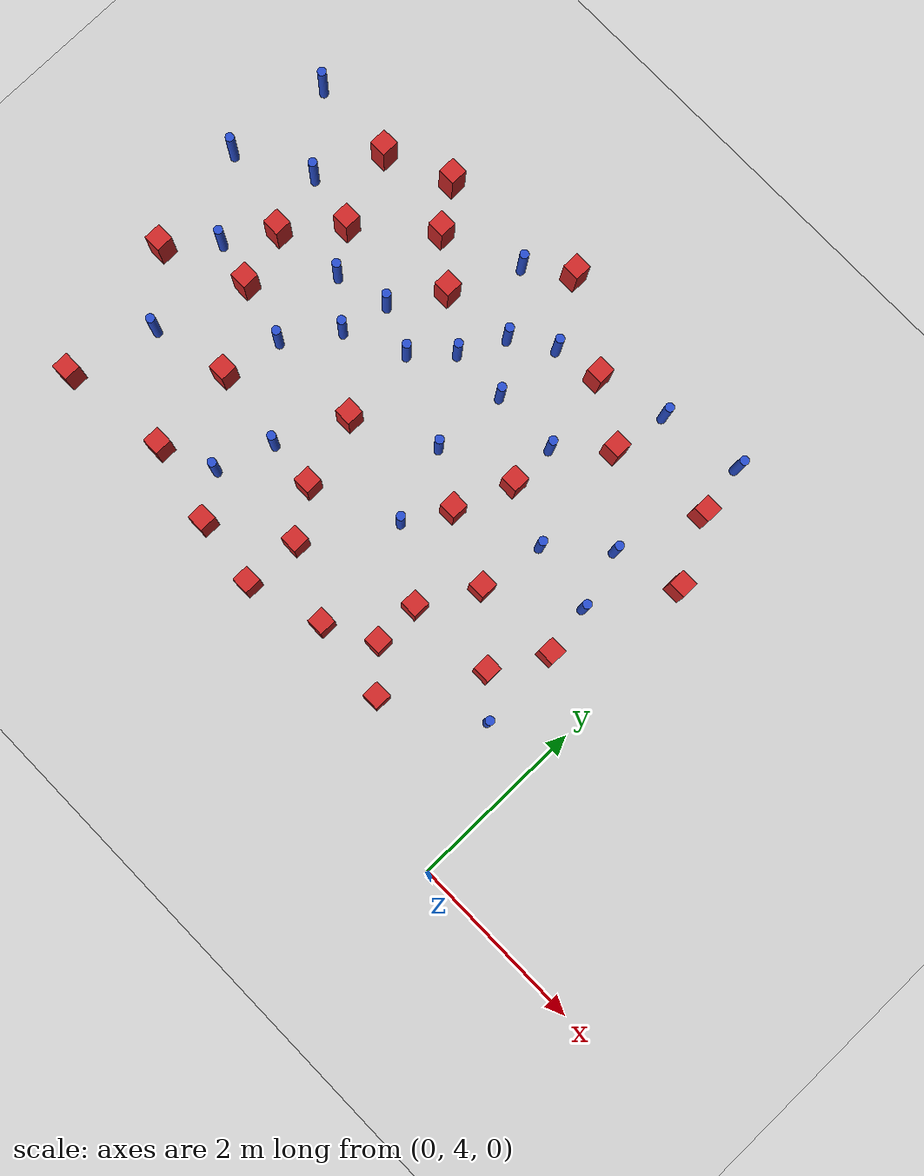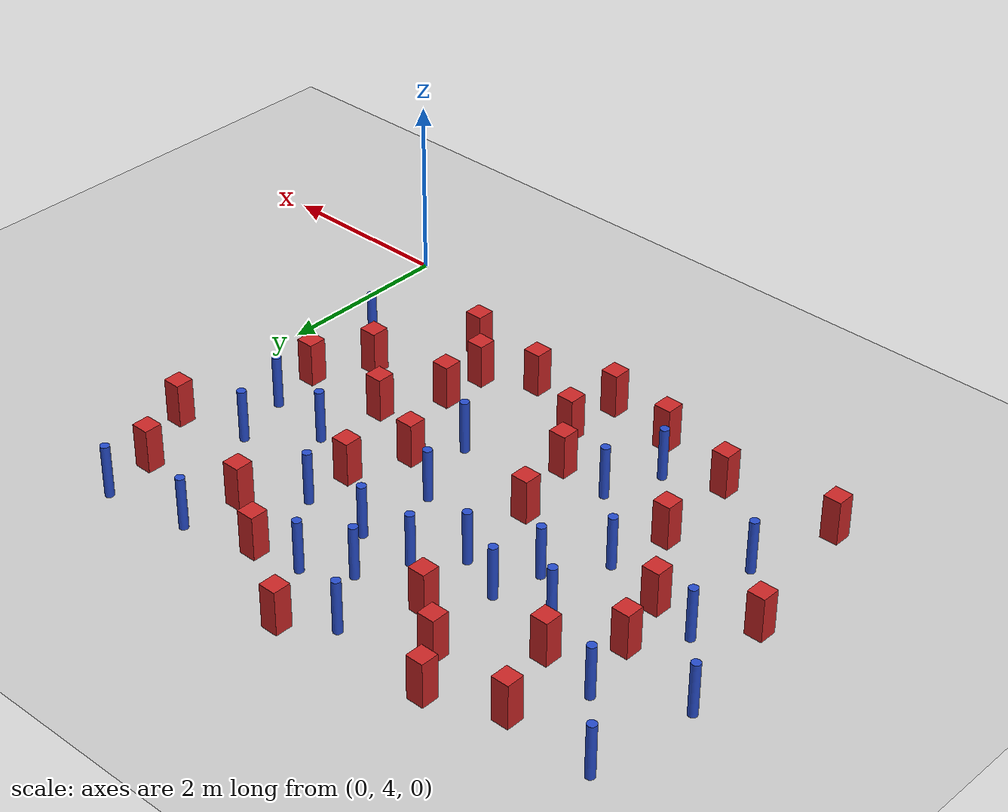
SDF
<sdf version="1.6">
 <world name="default">
  <model name="ground_plane">
   <static>1</static>
   <link name="link">
    <collision name="collision">
     <geometry><plane><normal>0 0 1</normal><size>100 100</size></plane></geometry>
     <surface><friction><ode><mu>100</mu><mu2>50</mu2></ode></friction></surface>
    </collision>
    <visual name="visual">
     <cast_shadows>0</cast_shadows>
     <geometry><plane><normal>0 0 1</normal><size>100 100</size></plane></geometry>
     <material>
      <ambient>1.0 1.0 1.0 1.0</ambient>
      <diffuse>0.8 0.8 0.8 1.0</diffuse>
      <specular>0.01 0.01 0.01 1.000000</specular>
     </material>
    </visual>
   </link>
  </model>
  <model name="square_post_obstacle2">
   <static>true</static>
   <pose>-1.6450809916 4.86027986707 1.91545236811e-07 -7.35059704564e-06 1.12565212e-07 2.39332434364e-05</pose>
   <link name="link">
    <pose>0 0 0.25 0 -0 0</pose>
    <inertial>
     <mass>100</mass>
     <inertia>
      <ixx>0.166667</ixx>
      <ixy>0</ixy>
      <ixz>0</ixz>
      <iyy>0.166667</iyy>
      <iyz>0</iyz>
      <izz>0.166667</izz>
     </inertia>
    </inertial>
    <collision name="collision"><geometry><box><size>.2 .2 .5</size></box></geometry></collision>
    <visual name="visual">
     <geometry><box><size>.2 .2 .5</size></box></geometry>
     <material>
      <script><name>Gazebo/Red</name><uri>file://media/materials/scripts/gazebo.material</uri></script>
     </material>
    </visual>
   </link>
  </model>
  <model name="square_post_obstacle5">
   <static>true</static>
   <pose>-2.05064613775 5.79552870133 1.91545236811e-07 -7.35059704564e-06 1.12565212e-07 2.39332434364e-05</pose>
   <link name="link">
    <pose>0 0 0.25 0 -0 0</pose>
    <inertial>
     <mass>100</mass>
     <inertia>
      <ixx>0.166667</ixx>
      <ixy>0</ixy>
      <ixz>0</ixz>
      <iyy>0.166667</iyy>
      <iyz>0</iyz>
      <izz>0.166667</izz>
     </inertia>
    </inertial>
    <collision name="collision"><geometry><box><size>.2 .2 .5</size></box></geometry></collision>
    <visual name="visual">
     <geometry><box><size>.2 .2 .5</size></box></geometry>
     <material>
      <script><name>Gazebo/Red</name><uri>file://media/materials/scripts/gazebo.material</uri></script>
     </material>
    </visual>
   </link>
  </model>
  <model name="pole_obstacle5">
   <static>true</static>
   <pose>-0.821117098225 7.03895343085 7.38925637345e-09 -8.471706928e-08 1.24976765086e-08 -1.74513093015e-07</pose>
   <link name="link">
    <pose>0 0 0.3 0 -0 0</pose>
    <inertial>
     <mass>1</mass>
     <inertia><ixx>0.145833</ixx><ixy>0</ixy><ixz>0</ixz><iyy>0.145833</iyy><iyz>0</iyz><izz>0.125</izz></inertia>
    </inertial>
    <collision name="collision">
     <geometry><cylinder><radius>0.05</radius><length>.6</length></cylinder></geometry>
    </collision>
    <visual name="visual">
     <geometry><cylinder><radius>0.05</radius><length>.6</length></cylinder></geometry>
     <material>
      <script><name>Gazebo/Blue</name><uri>file://media/materials/scripts/gazebo.material</uri></script>
     </material>
    </visual>
   </link>
  </model>
  <model name="square_post_obstacle8">
   <static>true</static>
   <pose>-2.46629739151 8.88326474359 1.91545236811e-07 -7.35059704564e-06 1.12565212e-07 2.39332434364e-05</pose>
   <link name="link">
    <pose>0 0 0.25 0 -0 0</pose>
    <inertial>
     <mass>100</mass>
     <inertia>
      <ixx>0.166667</ixx>
      <ixy>0</ixy>
      <ixz>0</ixz>
      <iyy>0.166667</iyy>
      <iyz>0</iyz>
      <izz>0.166667</izz>
     </inertia>
    </inertial>
    <collision name="collision"><geometry><box><size>.2 .2 .5</size></box></geometry></collision>
    <visual name="visual">
     <geometry><box><size>.2 .2 .5</size></box></geometry>
     <material>
      <script><name>Gazebo/Red</name><uri>file://media/materials/scripts/gazebo.material</uri></script>
     </material>
    </visual>
   </link>
  </model>
  <model name="square_post_obstacle24">
   <static>true</static>
   <pose>-5.0824964526 9.27646781381 1.91545236811e-07 -7.35059704564e-06 1.12565212e-07 2.39332434364e-05</pose>
   <link name="link">
    <pose>0 0 0.25 0 -0 0</pose>
    <inertial>
     <mass>100</mass>
     <inertia>
      <ixx>0.166667</ixx>
      <ixy>0</ixy>
      <ixz>0</ixz>
      <iyy>0.166667</iyy>
      <iyz>0</iyz>
      <izz>0.166667</izz>
     </inertia>
    </inertial>
    <collision name="collision"><geometry><box><size>.2 .2 .5</size></box></geometry></collision>
    <visual name="visual">
     <geometry><box><size>.2 .2 .5</size></box></geometry>
     <material>
      <script><name>Gazebo/Red</name><uri>file://media/materials/scripts/gazebo.material</uri></script>
     </material>
    </visual>
   </link>
  </model>
  <model name="square_post_obstacle34">
   <static>true</static>
   <pose>-3.42797544823 9.48898681773 1.91545236811e-07 -7.35059704564e-06 1.12565212e-07 2.39332434364e-05</pose>
   <link name="link">
    <pose>0 0 0.25 0 -0 0</pose>
    <inertial>
     <mass>100</mass>
     <inertia>
      <ixx>0.166667</ixx>
      <ixy>0</ixy>
      <ixz>0</ixz>
      <iyy>0.166667</iyy>
      <iyz>0</iyz>
      <izz>0.166667</izz>
     </inertia>
    </inertial>
    <collision name="collision"><geometry><box><size>.2 .2 .5</size></box></geometry></collision>
    <visual name="visual">
     <geometry><box><size>.2 .2 .5</size></box></geometry>
     <material>
      <script><name>Gazebo/Red</name><uri>file://media/materials/scripts/gazebo.material</uri></script>
     </material>
    </visual>
   </link>
  </model>
  <model name="pole_obstacle34">
   <static>true</static>
   <pose>-1.68032786721 9.09178856948 7.38925637345e-09 -8.47170692798e-08 1.24976764881e-08 -1.74513093027e-07</pose>
   <link name="link">
    <pose>0 0 0.3 0 -0 0</pose>
    <inertial>
     <mass>1</mass>
     <inertia><ixx>0.145833</ixx><ixy>0</ixy><ixz>0</ixz><iyy>0.145833</iyy><iyz>0</iyz><izz>0.125</izz></inertia>
    </inertial>
    <collision name="collision">
     <geometry><cylinder><radius>0.05</radius><length>.6</length></cylinder></geometry>
    </collision>
    <visual name="visual">
     <geometry><cylinder><radius>0.05</radius><length>.6</length></cylinder></geometry>
     <material>
      <script><name>Gazebo/Blue</name><uri>file://media/materials/scripts/gazebo.material</uri></script>
     </material>
    </visual>
   </link>
  </model>
  <model name="pole_obstacle35">
   <static>true</static>
   <pose>-5.09656689821 6.72482410313 7.38925637345e-09 -8.47170692796e-08 1.24976764786e-08 -1.74513093032e-07</pose>
   <link name="link">
    <pose>0 0 0.3 0 -0 0</pose>
    <inertial>
     <mass>1</mass>
     <inertia><ixx>0.145833</ixx><ixy>0</ixy><ixz>0</ixz><iyy>0.145833</iyy><iyz>0</iyz><izz>0.125</izz></inertia>
    </inertial>
    <collision name="collision">
     <geometry><cylinder><radius>0.05</radius><length>.6</length></cylinder></geometry>
    </collision>
    <visual name="visual">
     <geometry><cylinder><radius>0.05</radius><length>.6</length></cylinder></geometry>
     <material>
      <script><name>Gazebo/Blue</name><uri>file://media/materials/scripts/gazebo.material</uri></script>
     </material>
    </visual>
   </link>
  </model>
  <model name="pole_obstacle39">
   <static>true</static>
   <pose>-0.665240617858 5.50284004037 7.38925637345e-09 -8.471706928e-08 1.24976765086e-08 -1.74513093015e-07</pose>
   <link name="link">
    <pose>0 0 0.3 0 -0 0</pose>
    <inertial>
     <mass>1</mass>
     <inertia><ixx>0.145833</ixx><ixy>0</ixy><ixz>0</ixz><iyy>0.145833</iyy><iyz>0</iyz><izz>0.125</izz></inertia>
    </inertial>
    <collision name="collision">
     <geometry><cylinder><radius>0.05</radius><length>.6</length></cylinder></geometry>
    </collision>
    <visual name="visual">
     <geometry><cylinder><radius>0.05</radius><length>.6</length></cylinder></geometry>
     <material>
      <script><name>Gazebo/Blue</name><uri>file://media/materials/scripts/gazebo.material</uri></script>
     </material>
    </visual>
   </link>
  </model>
  <model name="pole_obstacle41">
   <static>true</static>
   <pose>-3.88664962259 9.15636735316 7.38925637345e-09 -8.47170692799e-08 1.24976765012e-08 -1.74513093021e-07</pose>
   <link name="link">
    <pose>0 0 0.3 0 -0 0</pose>
    <inertial>
     <mass>1</mass>
     <inertia><ixx>0.145833</ixx><ixy>0</ixy><ixz>0</ixz><iyy>0.145833</iyy><iyz>0</iyz><izz>0.125</izz></inertia>
    </inertial>
    <collision name="collision">
     <geometry><cylinder><radius>0.05</radius><length>.6</length></cylinder></geometry>
    </collision>
    <visual name="visual">
     <geometry><cylinder><radius>0.05</radius><length>.6</length></cylinder></geometry>
     <material>
      <script><name>Gazebo/Blue</name><uri>file://media/materials/scripts/gazebo.material</uri></script>
     </material>
    </visual>
   </link>
  </model>
  <model name="square_post_obstacle46">
   <static>true</static>
   <pose>-2.04258586172 5.26490292374 1.91545236811e-07 -7.35059704564e-06 1.12565212e-07 2.39332434364e-05</pose>
   <link name="link">
    <pose>0 0 0.25 0 -0 0</pose>
    <inertial>
     <mass>100</mass>
     <inertia>
      <ixx>0.166667</ixx>
      <ixy>0</ixy>
      <ixz>0</ixz>
      <iyy>0.166667</iyy>
      <iyz>0</iyz>
      <izz>0.166667</izz>
     </inertia>
    </inertial>
    <collision name="collision"><geometry><box><size>.2 .2 .5</size></box></geometry></collision>
    <visual name="visual">
     <geometry><box><size>.2 .2 .5</size></box></geometry>
     <material>
      <script><name>Gazebo/Red</name><uri>file://media/materials/scripts/gazebo.material</uri></script>
     </material>
    </visual>
   </link>
  </model>
  <model name="square_post_obstacle48">
   <static>true</static>
   <pose>-5.78669900526 6.90799992982 1.91545236811e-07 -7.35059704564e-06 1.12565212e-07 2.39332434364e-05</pose>
   <link name="link">
    <pose>0 0 0.25 0 -0 0</pose>
    <inertial>
     <mass>100</mass>
     <inertia>
      <ixx>0.166667</ixx>
      <ixy>0</ixy>
      <ixz>0</ixz>
      <iyy>0.166667</iyy>
      <iyz>0</iyz>
      <izz>0.166667</izz>
     </inertia>
    </inertial>
    <collision name="collision"><geometry><box><size>.2 .2 .5</size></box></geometry></collision>
    <visual name="visual">
     <geometry><box><size>.2 .2 .5</size></box></geometry>
     <material>
      <script><name>Gazebo/Red</name><uri>file://media/materials/scripts/gazebo.material</uri></script>
     </material>
    </visual>
   </link>
  </model>
  <model name="square_post_obstacle52">
   <static>true</static>
   <pose>-6.70958237577 6.53513901624 1.91545236811e-07 -7.35059704564e-06 1.12565212e-07 2.39332434364e-05</pose>
   <link name="link">
    <pose>0 0 0.25 0 -0 0</pose>
    <inertial>
     <mass>100</mass>
     <inertia>
      <ixx>0.166667</ixx>
      <ixy>0</ixy>
      <ixz>0</ixz>
      <iyy>0.166667</iyy>
      <iyz>0</iyz>
      <izz>0.166667</izz>
     </inertia>
    </inertial>
    <collision name="collision"><geometry><box><size>.2 .2 .5</size></box></geometry></collision>
    <visual name="visual">
     <geometry><box><size>.2 .2 .5</size></box></geometry>
     <material>
      <script><name>Gazebo/Red</name><uri>file://media/materials/scripts/gazebo.material</uri></script>
     </material>
    </visual>
   </link>
  </model>
  <model name="pole_obstacle58">
   <static>true</static>
   <pose>-4.58492661643 7.82388306524 7.38925637345e-09 -8.47170692796e-08 1.24976764786e-08 -1.74513093032e-07</pose>
   <link name="link">
    <pose>0 0 0.3 0 -0 0</pose>
    <inertial>
     <mass>1</mass>
     <inertia><ixx>0.145833</ixx><ixy>0</ixy><ixz>0</ixz><iyy>0.145833</iyy><iyz>0</iyz><izz>0.125</izz></inertia>
    </inertial>
    <collision name="collision">
     <geometry><cylinder><radius>0.05</radius><length>.6</length></cylinder></geometry>
    </collision>
    <visual name="visual">
     <geometry><cylinder><radius>0.05</radius><length>.6</length></cylinder></geometry>
     <material>
      <script><name>Gazebo/Blue</name><uri>file://media/materials/scripts/gazebo.material</uri></script>
     </material>
    </visual>
   </link>
  </model>
  <model name="pole_obstacle59">
   <static>true</static>
   <pose>-6.15182278736 8.25150208584 7.38925637345e-09 -8.471706928e-08 1.24976765081e-08 -1.74513093015e-07</pose>
   <link name="link">
    <pose>0 0 0.3 0 -0 0</pose>
    <inertial>
     <mass>1</mass>
     <inertia><ixx>0.145833</ixx><ixy>0</ixy><ixz>0</ixz><iyy>0.145833</iyy><iyz>0</iyz><izz>0.125</izz></inertia>
    </inertial>
    <collision name="collision">
     <geometry><cylinder><radius>0.05</radius><length>.6</length></cylinder></geometry>
    </collision>
    <visual name="visual">
     <geometry><cylinder><radius>0.05</radius><length>.6</length></cylinder></geometry>
     <material>
      <script><name>Gazebo/Blue</name><uri>file://media/materials/scripts/gazebo.material</uri></script>
     </material>
    </visual>
   </link>
  </model>
  <model name="square_post_obstacle63">
   <static>true</static>
   <pose>-5.22395186851 6.06849007464 1.91545236811e-07 -7.35059704564e-06 1.12565212e-07 2.39332434364e-05</pose>
   <link name="link">
    <pose>0 0 0.25 0 -0 0</pose>
    <inertial>
     <mass>100</mass>
     <inertia>
      <ixx>0.166667</ixx>
      <ixy>0</ixy>
      <ixz>0</ixz>
      <iyy>0.166667</iyy>
      <iyz>0</iyz>
      <izz>0.166667</izz>
     </inertia>
    </inertial>
    <collision name="collision"><geometry><box><size>.2 .2 .5</size></box></geometry></collision>
    <visual name="visual">
     <geometry><box><size>.2 .2 .5</size></box></geometry>
     <material>
      <script><name>Gazebo/Red</name><uri>file://media/materials/scripts/gazebo.material</uri></script>
     </material>
    </visual>
   </link>
  </model>
  <model name="pole_obstacle63">
   <static>true</static>
   <pose>-6.81067940548 9.01214676476 7.38925637345e-09 -8.471706928e-08 1.24976765081e-08 -1.74513093015e-07</pose>
   <link name="link">
    <pose>0 0 0.3 0 -0 0</pose>
    <inertial>
     <mass>1</mass>
     <inertia><ixx>0.145833</ixx><ixy>0</ixy><ixz>0</ixz><iyy>0.145833</iyy><iyz>0</iyz><izz>0.125</izz></inertia>
    </inertial>
    <collision name="collision">
     <geometry><cylinder><radius>0.05</radius><length>.6</length></cylinder></geometry>
    </collision>
    <visual name="visual">
     <geometry><cylinder><radius>0.05</radius><length>.6</length></cylinder></geometry>
     <material>
      <script><name>Gazebo/Blue</name><uri>file://media/materials/scripts/gazebo.material</uri></script>
     </material>
    </visual>
   </link>
  </model>
  <model name="square_post_obstacle76">
   <static>true</static>
   <pose>-2.58510832781 4.97790523694 1.91545236811e-07 -7.35059704564e-06 1.12565212e-07 2.39332434364e-05</pose>
   <link name="link">
    <pose>0 0 0.25 0 -0 0</pose>
    <inertial>
     <mass>100</mass>
     <inertia>
      <ixx>0.166667</ixx>
      <ixy>0</ixy>
      <ixz>0</ixz>
      <iyy>0.166667</iyy>
      <iyz>0</iyz>
      <izz>0.166667</izz>
     </inertia>
    </inertial>
    <collision name="collision"><geometry><box><size>.2 .2 .5</size></box></geometry></collision>
    <visual name="visual">
     <geometry><box><size>.2 .2 .5</size></box></geometry>
     <material>
      <script><name>Gazebo/Red</name><uri>file://media/materials/scripts/gazebo.material</uri></script>
     </material>
    </visual>
   </link>
  </model>
  <model name="pole_obstacle72">
   <static>true</static>
   <pose>-4.70419938552 7.29064237692 7.38925637345e-09 -8.47170692796e-08 1.24976764786e-08 -1.74513093032e-07</pose>
   <link name="link">
    <pose>0 0 0.3 0 -0 0</pose>
    <inertial>
     <mass>1</mass>
     <inertia><ixx>0.145833</ixx><ixy>0</ixy><ixz>0</ixz><iyy>0.145833</iyy><iyz>0</iyz><izz>0.125</izz></inertia>
    </inertial>
    <collision name="collision">
     <geometry><cylinder><radius>0.05</radius><length>.6</length></cylinder></geometry>
    </collision>
    <visual name="visual">
     <geometry><cylinder><radius>0.05</radius><length>.6</length></cylinder></geometry>
     <material>
      <script><name>Gazebo/Blue</name><uri>file://media/materials/scripts/gazebo.material</uri></script>
     </material>
    </visual>
   </link>
  </model>
  <model name="pole_obstacle75">
   <static>true</static>
   <pose>-2.26810608649 7.97958369007 7.38925637345e-09 -8.47170692799e-08 1.24976765031e-08 -1.7451309302e-07</pose>
   <link name="link">
    <pose>0 0 0.3 0 -0 0</pose>
    <inertial>
     <mass>1</mass>
     <inertia><ixx>0.145833</ixx><ixy>0</ixy><ixz>0</ixz><iyy>0.145833</iyy><iyz>0</iyz><izz>0.125</izz></inertia>
    </inertial>
    <collision name="collision">
     <geometry><cylinder><radius>0.05</radius><length>.6</length></cylinder></geometry>
    </collision>
    <visual name="visual">
     <geometry><cylinder><radius>0.05</radius><length>.6</length></cylinder></geometry>
     <material>
      <script><name>Gazebo/Blue</name><uri>file://media/materials/scripts/gazebo.material</uri></script>
     </material>
    </visual>
   </link>
  </model>
  <model name="pole_obstacle87">
   <static>true</static>
   <pose>-1.59594417406 7.17169164542 7.38925637345e-09 -8.47170692799e-08 1.24976765033e-08 -1.74513093018e-07</pose>
   <link name="link">
    <pose>0 0 0.3 0 -0 0</pose>
    <inertial>
     <mass>1</mass>
     <inertia><ixx>0.145833</ixx><ixy>0</ixy><ixz>0</ixz><iyy>0.145833</iyy><iyz>0</iyz><izz>0.125</izz></inertia>
    </inertial>
    <collision name="collision">
     <geometry><cylinder><radius>0.05</radius><length>.6</length></cylinder></geometry>
    </collision>
    <visual name="visual">
     <geometry><cylinder><radius>0.05</radius><length>.6</length></cylinder></geometry>
     <material>
      <script><name>Gazebo/Blue</name><uri>file://media/materials/scripts/gazebo.material</uri></script>
     </material>
    </visual>
   </link>
  </model>
  <model name="pole_obstacle95">
   <static>true</static>
   <pose>-6.09809782571 5.87105104789 7.38925637345e-09 -8.47170692796e-08 1.24976764786e-08 -1.74513093032e-07</pose>
   <link name="link">
    <pose>0 0 0.3 0 -0 0</pose>
    <inertial>
     <mass>1</mass>
     <inertia><ixx>0.145833</ixx><ixy>0</ixy><ixz>0</ixz><iyy>0.145833</iyy><iyz>0</iyz><izz>0.125</izz></inertia>
    </inertial>
    <collision name="collision">
     <geometry><cylinder><radius>0.05</radius><length>.6</length></cylinder></geometry>
    </collision>
    <visual name="visual">
     <geometry><cylinder><radius>0.05</radius><length>.6</length></cylinder></geometry>
     <material>
      <script><name>Gazebo/Blue</name><uri>file://media/materials/scripts/gazebo.material</uri></script>
     </material>
    </visual>
   </link>
  </model>
  <model name="square_post_obstacle84">
   <static>true</static>
   <pose>-5.1241217481 5.04338609667 1.91545236811e-07 -7.35059704564e-06 1.12565212e-07 2.39332434364e-05</pose>
   <link name="link">
    <pose>0 0 0.25 0 -0 0</pose>
    <inertial>
     <mass>100</mass>
     <inertia>
      <ixx>0.166667</ixx>
      <ixy>0</ixy>
      <ixz>0</ixz>
      <iyy>0.166667</iyy>
      <iyz>0</iyz>
      <izz>0.166667</izz>
     </inertia>
    </inertial>
    <collision name="collision"><geometry><box><size>.2 .2 .5</size></box></geometry></collision>
    <visual name="visual">
     <geometry><box><size>.2 .2 .5</size></box></geometry>
     <material>
      <script><name>Gazebo/Red</name><uri>file://media/materials/scripts/gazebo.material</uri></script>
     </material>
    </visual>
   </link>
  </model>
  <model name="pole_obstacle102">
   <static>true</static>
   <pose>-2.7903983642 6.30419786214 7.38925637345e-09 -8.47170692798e-08 1.24976765033e-08 -1.74513093019e-07</pose>
   <link name="link">
    <pose>0 0 0.3 0 -0 0</pose>
    <inertial>
     <mass>1</mass>
     <inertia><ixx>0.145833</ixx><ixy>0</ixy><ixz>0</ixz><iyy>0.145833</iyy><iyz>0</iyz><izz>0.125</izz></inertia>
    </inertial>
    <collision name="collision">
     <geometry><cylinder><radius>0.05</radius><length>.6</length></cylinder></geometry>
    </collision>
    <visual name="visual">
     <geometry><cylinder><radius>0.05</radius><length>.6</length></cylinder></geometry>
     <material>
      <script><name>Gazebo/Blue</name><uri>file://media/materials/scripts/gazebo.material</uri></script>
     </material>
    </visual>
   </link>
  </model>
  <model name="square_post_obstacle92">
   <static>true</static>
   <pose>-3.74373488959 5.88522773009 1.91545236811e-07 -7.35059704564e-06 1.12565212e-07 2.39332434364e-05</pose>
   <link name="link">
    <pose>0 0 0.25 0 -0 0</pose>
    <inertial>
     <mass>100</mass>
     <inertia>
      <ixx>0.166667</ixx>
      <ixy>0</ixy>
      <ixz>0</ixz>
      <iyy>0.166667</iyy>
      <iyz>0</iyz>
      <izz>0.166667</izz>
     </inertia>
    </inertial>
    <collision name="collision"><geometry><box><size>.2 .2 .5</size></box></geometry></collision>
    <visual name="visual">
     <geometry><box><size>.2 .2 .5</size></box></geometry>
     <material>
      <script><name>Gazebo/Red</name><uri>file://media/materials/scripts/gazebo.material</uri></script>
     </material>
    </visual>
   </link>
  </model>
  <model name="square_post_obstacle98">
   <static>true</static>
   <pose>-5.81429045029 8.96977163118 1.91545236811e-07 -7.35059704564e-06 1.12565212e-07 2.39332434364e-05</pose>
   <link name="link">
    <pose>0 0 0.25 0 -0 0</pose>
    <inertial>
     <mass>100</mass>
     <inertia>
      <ixx>0.166667</ixx>
      <ixy>0</ixy>
      <ixz>0</ixz>
      <iyy>0.166667</iyy>
      <iyz>0</iyz>
      <izz>0.166667</izz>
     </inertia>
    </inertial>
    <collision name="collision"><geometry><box><size>.2 .2 .5</size></box></geometry></collision>
    <visual name="visual">
     <geometry><box><size>.2 .2 .5</size></box></geometry>
     <material>
      <script><name>Gazebo/Red</name><uri>file://media/materials/scripts/gazebo.material</uri></script>
     </material>
    </visual>
   </link>
  </model>
  <model name="pole_obstacle112">
   <static>true</static>
   <pose>-0.752549461139 9.24912057601 7.38925637345e-09 -8.47170692797e-08 1.249767648e-08 -1.74513093032e-07</pose>
   <link name="link">
    <pose>0 0 0.3 0 -0 0</pose>
    <inertial>
     <mass>1</mass>
     <inertia><ixx>0.145833</ixx><ixy>0</ixy><ixz>0</ixz><iyy>0.145833</iyy><iyz>0</iyz><izz>0.125</izz></inertia>
    </inertial>
    <collision name="collision">
     <geometry><cylinder><radius>0.05</radius><length>.6</length></cylinder></geometry>
    </collision>
    <visual name="visual">
     <geometry><cylinder><radius>0.05</radius><length>.6</length></cylinder></geometry>
     <material>
      <script><name>Gazebo/Blue</name><uri>file://media/materials/scripts/gazebo.material</uri></script>
     </material>
    </visual>
   </link>
  </model>
  <model name="square_post_obstacle99">
   <static>true</static>
   <pose>-0.729030908746 6.4625945623 1.91545236811e-07 -7.35059704564e-06 1.12565212e-07 2.39332434364e-05</pose>
   <link name="link">
    <pose>0 0 0.25 0 -0 0</pose>
    <inertial>
     <mass>100</mass>
     <inertia>
      <ixx>0.166667</ixx>
      <ixy>0</ixy>
      <ixz>0</ixz>
      <iyy>0.166667</iyy>
      <iyz>0</iyz>
      <izz>0.166667</izz>
     </inertia>
    </inertial>
    <collision name="collision"><geometry><box><size>.2 .2 .5</size></box></geometry></collision>
    <visual name="visual">
     <geometry><box><size>.2 .2 .5</size></box></geometry>
     <material>
      <script><name>Gazebo/Red</name><uri>file://media/materials/scripts/gazebo.material</uri></script>
     </material>
    </visual>
   </link>
  </model>
  <model name="square_post_obstacle100">
   <static>true</static>
   <pose>-5.50871580547 8.1253391566 1.91545236811e-07 -7.35059704564e-06 1.12565212e-07 2.39332434364e-05</pose>
   <link name="link">
    <pose>0 0 0.25 0 -0 0</pose>
    <inertial>
     <mass>100</mass>
     <inertia>
      <ixx>0.166667</ixx>
      <ixy>0</ixy>
      <ixz>0</ixz>
      <iyy>0.166667</iyy>
      <iyz>0</iyz>
      <izz>0.166667</izz>
     </inertia>
    </inertial>
    <collision name="collision"><geometry><box><size>.2 .2 .5</size></box></geometry></collision>
    <visual name="visual">
     <geometry><box><size>.2 .2 .5</size></box></geometry>
     <material>
      <script><name>Gazebo/Red</name><uri>file://media/materials/scripts/gazebo.material</uri></script>
     </material>
    </visual>
   </link>
  </model>
  <model name="square_post_obstacle102">
   <static>true</static>
   <pose>-0.286243018771 7.91086980621 1.91545236811e-07 -7.35059704564e-06 1.12565212e-07 2.39332434364e-05</pose>
   <link name="link">
    <pose>0 0 0.25 0 -0 0</pose>
    <inertial>
     <mass>100</mass>
     <inertia>
      <ixx>0.166667</ixx>
      <ixy>0</ixy>
      <ixz>0</ixz>
      <iyy>0.166667</iyy>
      <iyz>0</iyz>
      <izz>0.166667</izz>
     </inertia>
    </inertial>
    <collision name="collision"><geometry><box><size>.2 .2 .5</size></box></geometry></collision>
    <visual name="visual">
     <geometry><box><size>.2 .2 .5</size></box></geometry>
     <material>
      <script><name>Gazebo/Red</name><uri>file://media/materials/scripts/gazebo.material</uri></script>
     </material>
    </visual>
   </link>
  </model>
  <model name="square_post_obstacle106">
   <static>true</static>
   <pose>-3.39022279768 5.36921829434 1.91545236811e-07 -7.35059704564e-06 1.12565212e-07 2.39332434364e-05</pose>
   <link name="link">
    <pose>0 0 0.25 0 -0 0</pose>
    <inertial>
     <mass>100</mass>
     <inertia>
      <ixx>0.166667</ixx>
      <ixy>0</ixy>
      <ixz>0</ixz>
      <iyy>0.166667</iyy>
      <iyz>0</iyz>
      <izz>0.166667</izz>
     </inertia>
    </inertial>
    <collision name="collision"><geometry><box><size>.2 .2 .5</size></box></geometry></collision>
    <visual name="visual">
     <geometry><box><size>.2 .2 .5</size></box></geometry>
     <material>
      <script><name>Gazebo/Red</name><uri>file://media/materials/scripts/gazebo.material</uri></script>
     </material>
    </visual>
   </link>
  </model>
  <model name="square_post_obstacle108">
   <static>true</static>
   <pose>-2.26530567455 7.44333100319 1.91545236811e-07 -7.35059704564e-06 1.12565212e-07 2.39332434364e-05</pose>
   <link name="link">
    <pose>0 0 0.25 0 -0 0</pose>
    <inertial>
     <mass>100</mass>
     <inertia>
      <ixx>0.166667</ixx>
      <ixy>0</ixy>
      <ixz>0</ixz>
      <iyy>0.166667</iyy>
      <iyz>0</iyz>
      <izz>0.166667</izz>
     </inertia>
    </inertial>
    <collision name="collision"><geometry><box><size>.2 .2 .5</size></box></geometry></collision>
    <visual name="visual">
     <geometry><box><size>.2 .2 .5</size></box></geometry>
     <material>
      <script><name>Gazebo/Red</name><uri>file://media/materials/scripts/gazebo.material</uri></script>
     </material>
    </visual>
   </link>
  </model>
  <model name="square_post_obstacle109">
   <static>true</static>
   <pose>-1.78501958554 8.45395523908 1.91545236811e-07 -7.35059704564e-06 1.12565212e-07 2.39332434364e-05</pose>
   <link name="link">
    <pose>0 0 0.25 0 -0 0</pose>
    <inertial>
     <mass>100</mass>
     <inertia>
      <ixx>0.166667</ixx>
      <ixy>0</ixy>
      <ixz>0</ixz>
      <iyy>0.166667</iyy>
      <iyz>0</iyz>
      <izz>0.166667</izz>
     </inertia>
    </inertial>
    <collision name="collision"><geometry><box><size>.2 .2 .5</size></box></geometry></collision>
    <visual name="visual">
     <geometry><box><size>.2 .2 .5</size></box></geometry>
     <material>
      <script><name>Gazebo/Red</name><uri>file://media/materials/scripts/gazebo.material</uri></script>
     </material>
    </visual>
   </link>
  </model>
  <model name="pole_obstacle124">
   <static>true</static>
   <pose>-1.01878036748 7.70008040346 7.38925637345e-09 -8.47170692799e-08 1.2497676505e-08 -1.74513093018e-07</pose>
   <link name="link">
    <pose>0 0 0.3 0 -0 0</pose>
    <inertial>
     <mass>1</mass>
     <inertia><ixx>0.145833</ixx><ixy>0</ixy><ixz>0</ixz><iyy>0.145833</iyy><iyz>0</iyz><izz>0.125</izz></inertia>
    </inertial>
    <collision name="collision">
     <geometry><cylinder><radius>0.05</radius><length>.6</length></cylinder></geometry>
    </collision>
    <visual name="visual">
     <geometry><cylinder><radius>0.05</radius><length>.6</length></cylinder></geometry>
     <material>
      <script><name>Gazebo/Blue</name><uri>file://media/materials/scripts/gazebo.material</uri></script>
     </material>
    </visual>
   </link>
  </model>
  <model name="pole_obstacle129">
   <static>true</static>
   <pose>-4.05122980727 7.60308537868 7.38925637345e-09 -8.47170692796e-08 1.24976764786e-08 -1.74513093032e-07</pose>
   <link name="link">
    <pose>0 0 0.3 0 -0 0</pose>
    <inertial>
     <mass>1</mass>
     <inertia><ixx>0.145833</ixx><ixy>0</ixy><ixz>0</ixz><iyy>0.145833</iyy><iyz>0</iyz><izz>0.125</izz></inertia>
    </inertial>
    <collision name="collision">
     <geometry><cylinder><radius>0.05</radius><length>.6</length></cylinder></geometry>
    </collision>
    <visual name="visual">
     <geometry><cylinder><radius>0.05</radius><length>.6</length></cylinder></geometry>
     <material>
      <script><name>Gazebo/Blue</name><uri>file://media/materials/scripts/gazebo.material</uri></script>
     </material>
    </visual>
   </link>
  </model>
  <model name="square_post_obstacle114">
   <static>true</static>
   <pose>-6.35788175986 4.89614650909 1.91545236811e-07 -7.35059704564e-06 1.12565212e-07 2.39332434364e-05</pose>
   <link name="link">
    <pose>0 0 0.25 0 -0 0</pose>
    <inertial>
     <mass>100</mass>
     <inertia>
      <ixx>0.166667</ixx>
      <ixy>0</ixy>
      <ixz>0</ixz>
      <iyy>0.166667</iyy>
      <iyz>0</iyz>
      <izz>0.166667</izz>
     </inertia>
    </inertial>
    <collision name="collision"><geometry><box><size>.2 .2 .5</size></box></geometry></collision>
    <visual name="visual">
     <geometry><box><size>.2 .2 .5</size></box></geometry>
     <material>
      <script><name>Gazebo/Red</name><uri>file://media/materials/scripts/gazebo.material</uri></script>
     </material>
    </visual>
   </link>
  </model>
  <model name="square_post_obstacle118">
   <static>true</static>
   <pose>-0.661354243095 8.64779749715 1.91545236811e-07 -7.35059704564e-06 1.12565212e-07 2.39332434364e-05</pose>
   <link name="link">
    <pose>0 0 0.25 0 -0 0</pose>
    <inertial>
     <mass>100</mass>
     <inertia>
      <ixx>0.166667</ixx>
      <ixy>0</ixy>
      <ixz>0</ixz>
      <iyy>0.166667</iyy>
      <iyz>0</iyz>
      <izz>0.166667</izz>
     </inertia>
    </inertial>
    <collision name="collision"><geometry><box><size>.2 .2 .5</size></box></geometry></collision>
    <visual name="visual">
     <geometry><box><size>.2 .2 .5</size></box></geometry>
     <material>
      <script><name>Gazebo/Red</name><uri>file://media/materials/scripts/gazebo.material</uri></script>
     </material>
    </visual>
   </link>
  </model>
  <model name="pole_obstacle138">
   <static>true</static>
   <pose>-3.68232869288 7.99652024962 7.38925637345e-09 -8.471706928e-08 1.24976765193e-08 -1.74513093011e-07</pose>
   <link name="link">
    <pose>0 0 0.3 0 -0 0</pose>
    <inertial>
     <mass>1</mass>
     <inertia><ixx>0.145833</ixx><ixy>0</ixy><ixz>0</ixz><iyy>0.145833</iyy><iyz>0</iyz><izz>0.125</izz></inertia>
    </inertial>
    <collision name="collision">
     <geometry><cylinder><radius>0.05</radius><length>.6</length></cylinder></geometry>
    </collision>
    <visual name="visual">
     <geometry><cylinder><radius>0.05</radius><length>.6</length></cylinder></geometry>
     <material>
      <script><name>Gazebo/Blue</name><uri>file://media/materials/scripts/gazebo.material</uri></script>
     </material>
    </visual>
   </link>
  </model>
  <model name="square_post_obstacle127">
   <static>true</static>
   <pose>-4.74892768618 8.7930191291 1.91545236811e-07 -7.35059704564e-06 1.12565212e-07 2.39332434364e-05</pose>
   <link name="link">
    <pose>0 0 0.25 0 -0 0</pose>
    <inertial>
     <mass>100</mass>
     <inertia>
      <ixx>0.166667</ixx>
      <ixy>0</ixy>
      <ixz>0</ixz>
      <iyy>0.166667</iyy>
      <iyz>0</iyz>
      <izz>0.166667</izz>
     </inertia>
    </inertial>
    <collision name="collision"><geometry><box><size>.2 .2 .5</size></box></geometry></collision>
    <visual name="visual">
     <geometry><box><size>.2 .2 .5</size></box></geometry>
     <material>
      <script><name>Gazebo/Red</name><uri>file://media/materials/scripts/gazebo.material</uri></script>
     </material>
    </visual>
   </link>
  </model>
  <model name="square_post_obstacle134">
   <static>true</static>
   <pose>-3.96874499304 6.69140585488 1.91545236811e-07 -7.35059704564e-06 1.12565212e-07 2.39332434364e-05</pose>
   <link name="link">
    <pose>0 0 0.25 0 -0 0</pose>
    <inertial>
     <mass>100</mass>
     <inertia>
      <ixx>0.166667</ixx>
      <ixy>0</ixy>
      <ixz>0</ixz>
      <iyy>0.166667</iyy>
      <iyz>0</iyz>
      <izz>0.166667</izz>
     </inertia>
    </inertial>
    <collision name="collision"><geometry><box><size>.2 .2 .5</size></box></geometry></collision>
    <visual name="visual">
     <geometry><box><size>.2 .2 .5</size></box></geometry>
     <material>
      <script><name>Gazebo/Red</name><uri>file://media/materials/scripts/gazebo.material</uri></script>
     </material>
    </visual>
   </link>
  </model>
  <model name="pole_obstacle145">
   <static>true</static>
   <pose>-4.31964699093 5.92540208681 7.38925637345e-09 -8.47170692796e-08 1.24976764786e-08 -1.74513093032e-07</pose>
   <link name="link">
    <pose>0 0 0.3 0 -0 0</pose>
    <inertial>
     <mass>1</mass>
     <inertia><ixx>0.145833</ixx><ixy>0</ixy><ixz>0</ixz><iyy>0.145833</iyy><iyz>0</iyz><izz>0.125</izz></inertia>
    </inertial>
    <collision name="collision">
     <geometry><cylinder><radius>0.05</radius><length>.6</length></cylinder></geometry>
    </collision>
    <visual name="visual">
     <geometry><cylinder><radius>0.05</radius><length>.6</length></cylinder></geometry>
     <material>
      <script><name>Gazebo/Blue</name><uri>file://media/materials/scripts/gazebo.material</uri></script>
     </material>
    </visual>
   </link>
  </model>
  <model name="pole_obstacle147">
   <static>true</static>
   <pose>-4.54198650213 5.29256581559 7.38925637345e-09 -8.47170692796e-08 1.24976764786e-08 -1.74513093032e-07</pose>
   <link name="link">
    <pose>0 0 0.3 0 -0 0</pose>
    <inertial>
     <mass>1</mass>
     <inertia><ixx>0.145833</ixx><ixy>0</ixy><ixz>0</ixz><iyy>0.145833</iyy><iyz>0</iyz><izz>0.125</izz></inertia>
    </inertial>
    <collision name="collision">
     <geometry><cylinder><radius>0.05</radius><length>.6</length></cylinder></geometry>
    </collision>
    <visual name="visual">
     <geometry><cylinder><radius>0.05</radius><length>.6</length></cylinder></geometry>
     <material>
      <script><name>Gazebo/Blue</name><uri>file://media/materials/scripts/gazebo.material</uri></script>
     </material>
    </visual>
   </link>
  </model>
  <model name="pole_obstacle154">
   <static>true</static>
   <pose>-6.30299065531 7.03067799362 7.38925637345e-09 -8.47170692796e-08 1.24976764786e-08 -1.74513093032e-07</pose>
   <link name="link">
    <pose>0 0 0.3 0 -0 0</pose>
    <inertial>
     <mass>1</mass>
     <inertia><ixx>0.145833</ixx><ixy>0</ixy><ixz>0</ixz><iyy>0.145833</iyy><iyz>0</iyz><izz>0.125</izz></inertia>
    </inertial>
    <collision name="collision">
     <geometry><cylinder><radius>0.05</radius><length>.6</length></cylinder></geometry>
    </collision>
    <visual name="visual">
     <geometry><cylinder><radius>0.05</radius><length>.6</length></cylinder></geometry>
     <material>
      <script><name>Gazebo/Blue</name><uri>file://media/materials/scripts/gazebo.material</uri></script>
     </material>
    </visual>
   </link>
  </model>
  <model name="square_post_obstacle145">
   <static>true</static>
   <pose>-4.21488906106 4.82893117929 1.91545236811e-07 -7.35059704564e-06 1.12565212e-07 2.39332434364e-05</pose>
   <link name="link">
    <pose>0 0 0.25 0 -0 0</pose>
    <inertial>
     <mass>100</mass>
     <inertia>
      <ixx>0.166667</ixx>
      <ixy>0</ixy>
      <ixz>0</ixz>
      <iyy>0.166667</iyy>
      <iyz>0</iyz>
      <izz>0.166667</izz>
     </inertia>
    </inertial>
    <collision name="collision"><geometry><box><size>.2 .2 .5</size></box></geometry></collision>
    <visual name="visual">
     <geometry><box><size>.2 .2 .5</size></box></geometry>
     <material>
      <script><name>Gazebo/Red</name><uri>file://media/materials/scripts/gazebo.material</uri></script>
     </material>
    </visual>
   </link>
  </model>
  <model name="square_post_obstacle148">
   <static>true</static>
   <pose>-1.70931392194 6.43000043958 1.91545236811e-07 -7.35059704564e-06 1.12565212e-07 2.39332434364e-05</pose>
   <link name="link">
    <pose>0 0 0.25 0 -0 0</pose>
    <inertial>
     <mass>100</mass>
     <inertia>
      <ixx>0.166667</ixx>
      <ixy>0</ixy>
      <ixz>0</ixz>
      <iyy>0.166667</iyy>
      <iyz>0</iyz>
      <izz>0.166667</izz>
     </inertia>
    </inertial>
    <collision name="collision"><geometry><box><size>.2 .2 .5</size></box></geometry></collision>
    <visual name="visual">
     <geometry><box><size>.2 .2 .5</size></box></geometry>
     <material>
      <script><name>Gazebo/Red</name><uri>file://media/materials/scripts/gazebo.material</uri></script>
     </material>
    </visual>
   </link>
  </model>
  <model name="square_post_obstacle154">
   <static>true</static>
   <pose>-1.05777757186 5.8628327066 1.91545236811e-07 -7.35059704564e-06 1.12565212e-07 2.39332434364e-05</pose>
   <link name="link">
    <pose>0 0 0.25 0 -0 0</pose>
    <inertial>
     <mass>100</mass>
     <inertia>
      <ixx>0.166667</ixx>
      <ixy>0</ixy>
      <ixz>0</ixz>
      <iyy>0.166667</iyy>
      <iyz>0</iyz>
      <izz>0.166667</izz>
     </inertia>
    </inertial>
    <collision name="collision"><geometry><box><size>.2 .2 .5</size></box></geometry></collision>
    <visual name="visual">
     <geometry><box><size>.2 .2 .5</size></box></geometry>
     <material>
      <script><name>Gazebo/Red</name><uri>file://media/materials/scripts/gazebo.material</uri></script>
     </material>
    </visual>
   </link>
  </model>
  <model name="pole_obstacle169">
   <static>true</static>
   <pose>-3.03631816934 7.99618464026 7.38925637345e-09 -8.471706928e-08 1.24976765193e-08 -1.74513093011e-07</pose>
   <link name="link">
    <pose>0 0 0.3 0 -0 0</pose>
    <inertial>
     <mass>1</mass>
     <inertia><ixx>0.145833</ixx><ixy>0</ixy><ixz>0</ixz><iyy>0.145833</iyy><iyz>0</iyz><izz>0.125</izz></inertia>
    </inertial>
    <collision name="collision">
     <geometry><cylinder><radius>0.05</radius><length>.6</length></cylinder></geometry>
    </collision>
    <visual name="visual">
     <geometry><cylinder><radius>0.05</radius><length>.6</length></cylinder></geometry>
     <material>
      <script><name>Gazebo/Blue</name><uri>file://media/materials/scripts/gazebo.material</uri></script>
     </material>
    </visual>
   </link>
  </model>
  <model name="square_post_obstacle161">
   <static>true</static>
   <pose>-5.97100118873 7.55084269408 1.91545236811e-07 -7.35059704564e-06 1.12565212e-07 2.39332434364e-05</pose>
   <link name="link">
    <pose>0 0 0.25 0 -0 0</pose>
    <inertial>
     <mass>100</mass>
     <inertia>
      <ixx>0.166667</ixx>
      <ixy>0</ixy>
      <ixz>0</ixz>
      <iyy>0.166667</iyy>
      <iyz>0</iyz>
      <izz>0.166667</izz>
     </inertia>
    </inertial>
    <collision name="collision"><geometry><box><size>.2 .2 .5</size></box></geometry></collision>
    <visual name="visual">
     <geometry><box><size>.2 .2 .5</size></box></geometry>
     <material>
      <script><name>Gazebo/Red</name><uri>file://media/materials/scripts/gazebo.material</uri></script>
     </material>
    </visual>
   </link>
  </model>
  <model name="square_post_obstacle163">
   <static>true</static>
   <pose>-4.23730010594 8.38716039462 1.91545236811e-07 -7.35059704564e-06 1.12565212e-07 2.39332434364e-05</pose>
   <link name="link">
    <pose>0 0 0.25 0 -0 0</pose>
    <inertial>
     <mass>100</mass>
     <inertia>
      <ixx>0.166667</ixx>
      <ixy>0</ixy>
      <ixz>0</ixz>
      <iyy>0.166667</iyy>
      <iyz>0</iyz>
      <izz>0.166667</izz>
     </inertia>
    </inertial>
    <collision name="collision"><geometry><box><size>.2 .2 .5</size></box></geometry></collision>
    <visual name="visual">
     <geometry><box><size>.2 .2 .5</size></box></geometry>
     <material>
      <script><name>Gazebo/Red</name><uri>file://media/materials/scripts/gazebo.material</uri></script>
     </material>
    </visual>
   </link>
  </model>
  <model name="pole_obstacle178">
   <static>true</static>
   <pose>-2.98397054427 8.78896348464 7.38925637345e-09 -8.47170692793e-08 1.24976764408e-08 -1.74513093041e-07</pose>
   <link name="link">
    <pose>0 0 0.3 0 -0 0</pose>
    <inertial>
     <mass>1</mass>
     <inertia><ixx>0.145833</ixx><ixy>0</ixy><ixz>0</ixz><iyy>0.145833</iyy><iyz>0</iyz><izz>0.125</izz></inertia>
    </inertial>
    <collision name="collision">
     <geometry><cylinder><radius>0.05</radius><length>.6</length></cylinder></geometry>
    </collision>
    <visual name="visual">
     <geometry><cylinder><radius>0.05</radius><length>.6</length></cylinder></geometry>
     <material>
      <script><name>Gazebo/Blue</name><uri>file://media/materials/scripts/gazebo.material</uri></script>
     </material>
    </visual>
   </link>
  </model>
  <model name="pole_obstacle197">
   <static>true</static>
   <pose>-3.08882973746 7.14530016543 7.38925637345e-09 -8.47170692798e-08 1.24976765033e-08 -1.74513093019e-07</pose>
   <link name="link">
    <pose>0 0 0.3 0 -0 0</pose>
    <inertial>
     <mass>1</mass>
     <inertia><ixx>0.145833</ixx><ixy>0</ixy><ixz>0</ixz><iyy>0.145833</iyy><iyz>0</iyz><izz>0.125</izz></inertia>
    </inertial>
    <collision name="collision">
     <geometry><cylinder><radius>0.05</radius><length>.6</length></cylinder></geometry>
    </collision>
    <visual name="visual">
     <geometry><cylinder><radius>0.05</radius><length>.6</length></cylinder></geometry>
     <material>
      <script><name>Gazebo/Blue</name><uri>file://media/materials/scripts/gazebo.material</uri></script>
     </material>
    </visual>
   </link>
  </model>
  <model name="square_post_obstacle194">
   <static>true</static>
   <pose>-3.42434326593 4.71912701273 1.91545236811e-07 -7.35059704564e-06 1.12565212e-07 2.39332434364e-05</pose>
   <link name="link">
    <pose>0 0 0.25 0 -0 0</pose>
    <inertial>
     <mass>100</mass>
     <inertia>
      <ixx>0.166667</ixx>
      <ixy>0</ixy>
      <ixz>0</ixz>
      <iyy>0.166667</iyy>
      <iyz>0</iyz>
      <izz>0.166667</izz>
     </inertia>
    </inertial>
    <collision name="collision"><geometry><box><size>.2 .2 .5</size></box></geometry></collision>
    <visual name="visual">
     <geometry><box><size>.2 .2 .5</size></box></geometry>
     <material>
      <script><name>Gazebo/Red</name><uri>file://media/materials/scripts/gazebo.material</uri></script>
     </material>
    </visual>
   </link>
  </model>
  <model name="pole_obstacle200">
   <static>true</static>
   <pose>-6.95784066617 7.81063487808 7.38925637345e-09 -8.47170692796e-08 1.24976764786e-08 -1.74513093032e-07</pose>
   <link name="link">
    <pose>0 0 0.3 0 -0 0</pose>
    <inertial>
     <mass>1</mass>
     <inertia><ixx>0.145833</ixx><ixy>0</ixy><ixz>0</ixz><iyy>0.145833</iyy><iyz>0</iyz><izz>0.125</izz></inertia>
    </inertial>
    <collision name="collision">
     <geometry><cylinder><radius>0.05</radius><length>.6</length></cylinder></geometry>
    </collision>
    <visual name="visual">
     <geometry><cylinder><radius>0.05</radius><length>.6</length></cylinder></geometry>
     <material>
      <script><name>Gazebo/Blue</name><uri>file://media/materials/scripts/gazebo.material</uri></script>
     </material>
    </visual>
   </link>
  </model>
  <model name="pole_obstacle204">
   <static>true</static>
   <pose>-5.18458030733 7.67534233906 7.38925637345e-09 -8.47170692796e-08 1.24976764786e-08 -1.74513093032e-07</pose>
   <link name="link">
    <pose>0 0 0.3 0 -0 0</pose>
    <inertial>
     <mass>1</mass>
     <inertia><ixx>0.145833</ixx><ixy>0</ixy><ixz>0</ixz><iyy>0.145833</iyy><iyz>0</iyz><izz>0.125</izz></inertia>
    </inertial>
    <collision name="collision">
     <geometry><cylinder><radius>0.05</radius><length>.6</length></cylinder></geometry>
    </collision>
    <visual name="visual">
     <geometry><cylinder><radius>0.05</radius><length>.6</length></cylinder></geometry>
     <material>
      <script><name>Gazebo/Blue</name><uri>file://media/materials/scripts/gazebo.material</uri></script>
     </material>
    </visual>
   </link>
  </model>
  <model name="pole_obstacle220">
   <static>true</static>
   <pose>-3.43325976176 8.4956468638 7.38925637345e-09 -8.47170692793e-08 1.24976764408e-08 -1.74513093041e-07</pose>
   <link name="link">
    <pose>0 0 0.3 0 -0 0</pose>
    <inertial>
     <mass>1</mass>
     <inertia><ixx>0.145833</ixx><ixy>0</ixy><ixz>0</ixz><iyy>0.145833</iyy><iyz>0</iyz><izz>0.125</izz></inertia>
    </inertial>
    <collision name="collision">
     <geometry><cylinder><radius>0.05</radius><length>.6</length></cylinder></geometry>
    </collision>
    <visual name="visual">
     <geometry><cylinder><radius>0.05</radius><length>.6</length></cylinder></geometry>
     <material>
      <script><name>Gazebo/Blue</name><uri>file://media/materials/scripts/gazebo.material</uri></script>
     </material>
    </visual>
   </link>
  </model>
  <model name="square_post_obstacle212">
   <static>true</static>
   <pose>-2.5061500352 6.78813998808 1.91545236811e-07 -7.35059704564e-06 1.12565212e-07 2.39332434364e-05</pose>
   <link name="link">
    <pose>0 0 0.25 0 -0 0</pose>
    <inertial>
     <mass>100</mass>
     <inertia>
      <ixx>0.166667</ixx>
      <ixy>0</ixy>
      <ixz>0</ixz>
      <iyy>0.166667</iyy>
      <iyz>0</iyz>
      <izz>0.166667</izz>
     </inertia>
    </inertial>
    <collision name="collision"><geometry><box><size>.2 .2 .5</size></box></geometry></collision>
    <visual name="visual">
     <geometry><box><size>.2 .2 .5</size></box></geometry>
     <material>
      <script><name>Gazebo/Red</name><uri>file://media/materials/scripts/gazebo.material</uri></script>
     </material>
    </visual>
   </link>
  </model>
 </world>
</sdf>
